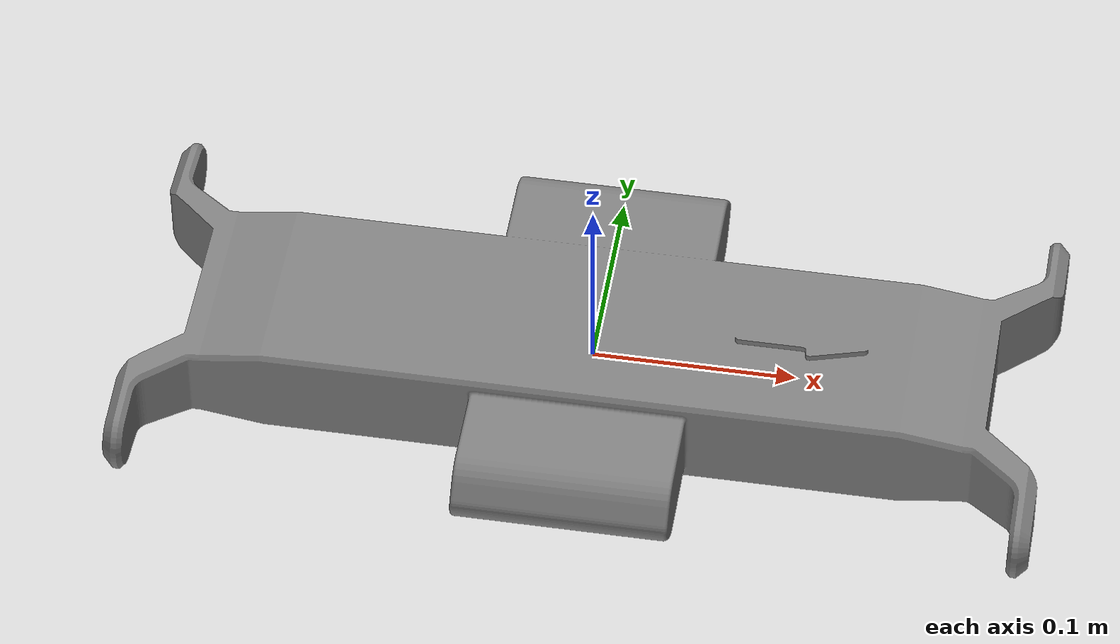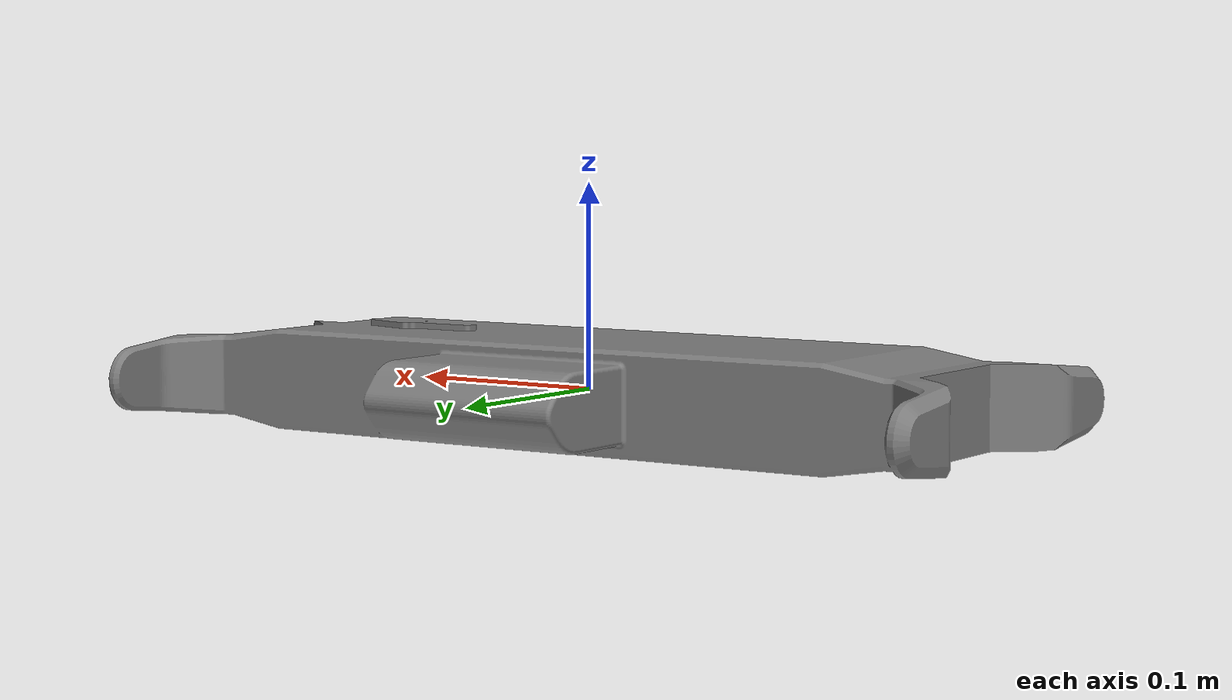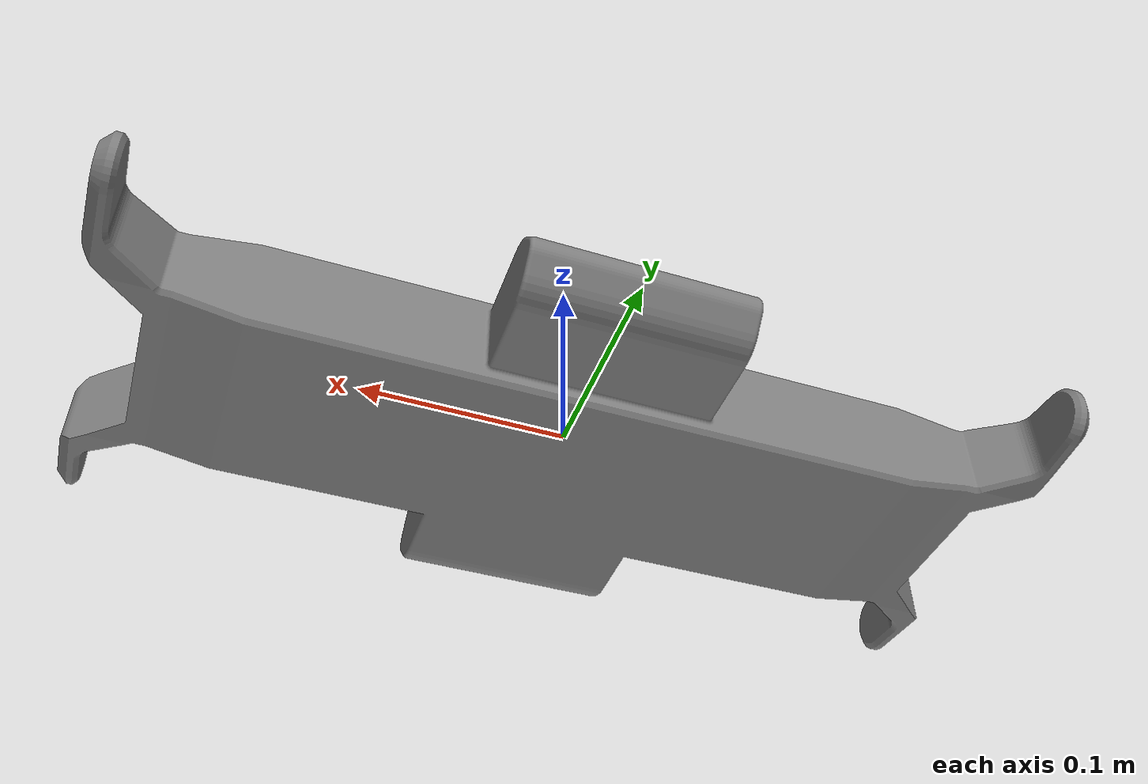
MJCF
<mujoco model="solo_12_base">
  <default>
    <default class="visual">
      <geom group="2" type="mesh" contype="0" conaffinity="0"/>
    </default>
    <default class="collision">
      <geom group="3" type="mesh"/>
    </default>
  </default>
  <asset>
    <mesh file="solo_12_base.obj"/>
    <mesh file="solo_12_base_collision_0.obj"/>
    <mesh file="solo_12_base_collision_1.obj"/>
    <mesh file="solo_12_base_collision_2.obj"/>
    <mesh file="solo_12_base_collision_3.obj"/>
    <mesh file="solo_12_base_collision_4.obj"/>
    <mesh file="solo_12_base_collision_5.obj"/>
    <mesh file="solo_12_base_collision_6.obj"/>
    <mesh file="solo_12_base_collision_7.obj"/>
    <mesh file="solo_12_base_collision_8.obj"/>
    <mesh file="solo_12_base_collision_9.obj"/>
    <mesh file="solo_12_base_collision_10.obj"/>
    <mesh file="solo_12_base_collision_11.obj"/>
  </asset>
  <worldbody>
    <body name="solo_12_base">
      <geom mesh="solo_12_base" class="visual"/>
      <geom mesh="solo_12_base_collision_0" class="collision"/>
      <geom mesh="solo_12_base_collision_1" class="collision"/>
      <geom mesh="solo_12_base_collision_2" class="collision"/>
      <geom mesh="solo_12_base_collision_3" class="collision"/>
      <geom mesh="solo_12_base_collision_4" class="collision"/>
      <geom mesh="solo_12_base_collision_5" class="collision"/>
      <geom mesh="solo_12_base_collision_6" class="collision"/>
      <geom mesh="solo_12_base_collision_7" class="collision"/>
      <geom mesh="solo_12_base_collision_8" class="collision"/>
      <geom mesh="solo_12_base_collision_9" class="collision"/>
      <geom mesh="solo_12_base_collision_10" class="collision"/>
      <geom mesh="solo_12_base_collision_11" class="collision"/>
    </body>
  </worldbody>
</mujoco>
